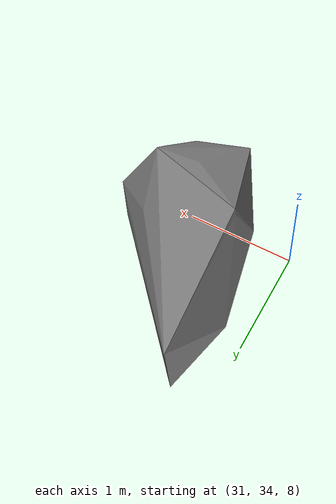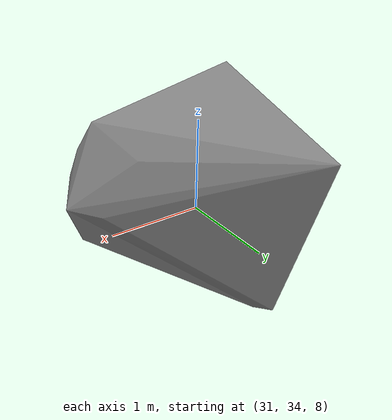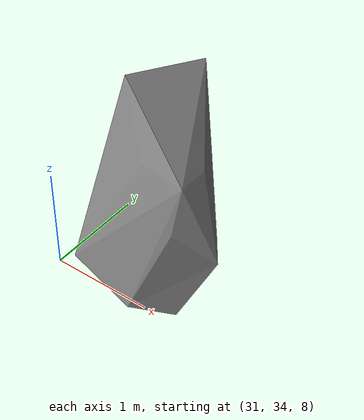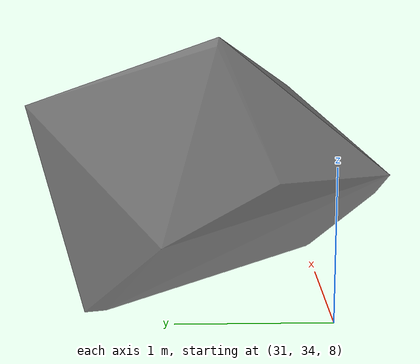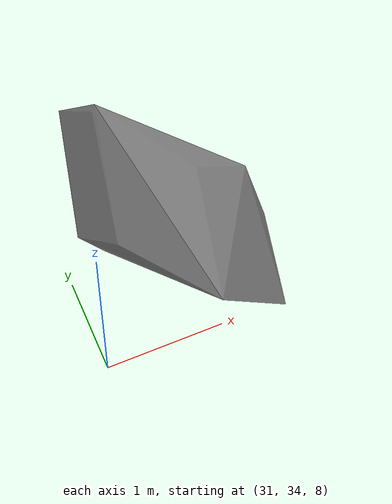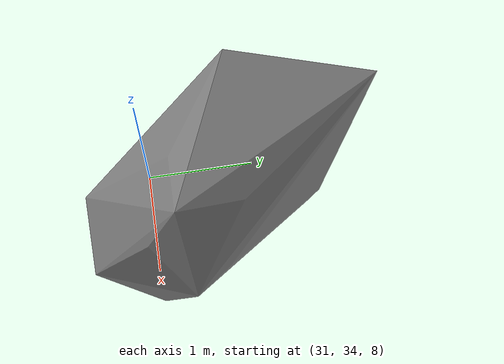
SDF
<sdf version="1.8">
 <model name="blue_mountains">
  <static>true</static>
  <link name="forest_23_23">
   <collision name="tree_138_trunk">
    <pose>32.13435 34.95004 4.347151 0 0 0.6732803</pose>
    <geometry><cylinder><radius>0.07220621</radius><length>4.345435</length></cylinder></geometry>
   </collision>
   <collision name="plant_138_crown_0">
    <pose>32.11177 34.93203 2.174433 0 0 0.6732803</pose>
    <geometry>
     <mesh>
      <uri>model://blue_mountains/meshes/canopy_2_0.dae</uri>
      <scale>0.2888249 0.2888249 0.319717</scale>
     </mesh>
    </geometry>
   </collision>
   <collision name="plant_138_crown_1">
    <pose>32.11177 34.93203 2.174433 0 0 0.6732803</pose>
    <geometry>
     <mesh>
      <uri>model://blue_mountains/meshes/canopy_2_1.dae</uri>
      <scale>0.2888249 0.2888249 0.319717</scale>
     </mesh>
    </geometry>
   </collision>
   <collision name="tree_156_trunk">
    <pose>30.42732 34.41666 4.255098 0 0 1.708861</pose>
    <geometry><cylinder><radius>0.04786937</radius><length>2.693045</length></cylinder></geometry>
   </collision>
   <collision name="plant_156_crown_0">
    <pose>30.42996 34.3977 2.908576 0 0 1.708861</pose>
    <geometry>
     <mesh>
      <uri>model://blue_mountains/meshes/canopy_1_0.dae</uri>
      <scale>0.1914775 0.1914775 0.1989105</scale>
     </mesh>
    </geometry>
   </collision>
   <collision name="plant_156_crown_1">
    <pose>30.42996 34.3977 2.908576 0 0 1.708861</pose>
    <geometry>
     <mesh>
      <uri>model://blue_mountains/meshes/canopy_1_1.dae</uri>
      <scale>0.1914775 0.1914775 0.1989105</scale>
     </mesh>
    </geometry>
   </collision>
   <collision name="tree_185_trunk">
    <pose>35.31545 33.21816 2.580832 0 0 1.949286</pose>
    <geometry><cylinder><radius>0.05326714</radius><length>2.47264</length></cylinder></geometry>
   </collision>
   <collision name="plant_185_crown_0">
    <pose>35.32333 33.19836 1.344512 0 0 1.949286</pose>
    <geometry>
     <mesh>
      <uri>model://blue_mountains/meshes/canopy_7_0.dae</uri>
      <scale>0.2130686 0.2130686 0.1859087</scale>
     </mesh>
    </geometry>
   </collision>
   <collision name="plant_185_crown_1">
    <pose>35.32333 33.19836 1.344512 0 0 1.949286</pose>
    <geometry>
     <mesh>
      <uri>model://blue_mountains/meshes/canopy_7_1.dae</uri>
      <scale>0.2130686 0.2130686 0.1859087</scale>
     </mesh>
    </geometry>
   </collision>
   <collision name="tree_206_trunk">
    <pose>37.39581 33.92195 2.445863 0 0 0.2491245</pose>
    <geometry><cylinder><radius>0.06748037</radius><length>3.532074</length></cylinder></geometry>
   </collision>
   <collision name="plant_206_crown_0">
    <pose>37.36965 33.91529 0.6798263 0 0 0.2491245</pose>
    <geometry>
     <mesh>
      <uri>model://blue_mountains/meshes/canopy_3_0.dae</uri>
      <scale>0.2699215 0.2699215 0.2625933</scale>
     </mesh>
    </geometry>
   </collision>
   <collision name="plant_206_crown_1">
    <pose>37.36965 33.91529 0.6798263 0 0 0.2491245</pose>
    <geometry>
     <mesh>
      <uri>model://blue_mountains/meshes/canopy_3_1.dae</uri>
      <scale>0.2699215 0.2699215 0.2625933</scale>
     </mesh>
    </geometry>
   </collision>
   <collision name="tree_220_trunk">
    <pose>30.57634 34.94198 4.533218 0 0 -2.170517</pose>
    <geometry><cylinder><radius>0.06306327</radius><length>3.601202</length></cylinder></geometry>
   </collision>
   <collision name="plant_220_crown_0">
    <pose>30.59058 34.9628 2.732617 0 0 -2.170517</pose>
    <geometry>
     <mesh>
      <uri>model://blue_mountains/meshes/canopy_8_0.dae</uri>
      <scale>0.2522531 0.2522531 0.2679617</scale>
     </mesh>
    </geometry>
   </collision>
   <collision name="plant_220_crown_1">
    <pose>30.59058 34.9628 2.732617 0 0 -2.170517</pose>
    <geometry>
     <mesh>
      <uri>model://blue_mountains/meshes/canopy_8_1.dae</uri>
      <scale>0.2522531 0.2522531 0.2679617</scale>
     </mesh>
    </geometry>
   </collision>
   <collision name="tree_306_trunk">
    <pose>39.16741 30.36535 2.231737 0 0 0.3067981</pose>
    <geometry><cylinder><radius>0.059647</radius><length>3.060164</length></cylinder></geometry>
   </collision>
   <collision name="plant_306_crown_0">
    <pose>39.14467 30.35814 0.7016544 0 0 0.3067981</pose>
    <geometry>
     <mesh><uri>model://blue_mountains/meshes/canopy_5_0.dae</uri><scale>0.238588 0.238588 0.2300159</scale></mesh>
    </geometry>
   </collision>
   <collision name="plant_306_crown_1">
    <pose>39.14467 30.35814 0.7016544 0 0 0.3067981</pose>
    <geometry>
     <mesh><uri>model://blue_mountains/meshes/canopy_5_1.dae</uri><scale>0.238588 0.238588 0.2300159</scale></mesh>
    </geometry>
   </collision>
   <collision name="tree_317_trunk">
    <pose>31.8081 33.13959 4.432879 0 0 -2.932905</pose>
    <geometry><cylinder><radius>0.0592015</radius><length>3.665702</length></cylinder></geometry>
   </collision>
   <collision name="plant_317_crown_0">
    <pose>31.83126 33.1445 2.600028 0 0 -2.932905</pose>
    <geometry>
     <mesh><uri>model://blue_mountains/meshes/canopy_5_0.dae</uri><scale>0.236806 0.236806 0.2755309</scale></mesh>
    </geometry>
   </collision>
   <collision name="plant_317_crown_1">
    <pose>31.83126 33.1445 2.600028 0 0 -2.932905</pose>
    <geometry>
     <mesh><uri>model://blue_mountains/meshes/canopy_5_1.dae</uri><scale>0.236806 0.236806 0.2755309</scale></mesh>
    </geometry>
   </collision>
   <collision name="tree_353_trunk">
    <pose>36.95403 32.56184 1.927754 0 0 2.530218</pose>
    <geometry><cylinder><radius>0.04002918</radius><length>1.936123</length></cylinder></geometry>
   </collision>
   <collision name="plant_353_crown_0">
    <pose>36.96714 32.55265 0.959692 0 0 2.530218</pose>
    <geometry>
     <mesh>
      <uri>model://blue_mountains/meshes/canopy_8_0.dae</uri>
      <scale>0.1601167 0.1601167 0.1440649</scale>
     </mesh>
    </geometry>
   </collision>
   <collision name="plant_353_crown_1">
    <pose>36.96714 32.55265 0.959692 0 0 2.530218</pose>
    <geometry>
     <mesh>
      <uri>model://blue_mountains/meshes/canopy_8_1.dae</uri>
      <scale>0.1601167 0.1601167 0.1440649</scale>
     </mesh>
    </geometry>
   </collision>
   <collision name="tree_371_trunk">
    <pose>36.37354 32.72029 2.092211 0 0 1.308015</pose>
    <geometry><cylinder><radius>0.04117539</radius><length>1.981352</length></cylinder></geometry>
   </collision>
   <collision name="plant_371_crown_0">
    <pose>36.36927 32.70438 1.101535 0 0 1.308015</pose>
    <geometry>
     <mesh>
      <uri>model://blue_mountains/meshes/canopy_6_0.dae</uri>
      <scale>0.1647016 0.1647016 0.1460498</scale>
     </mesh>
    </geometry>
   </collision>
   <collision name="plant_371_crown_1">
    <pose>36.36927 32.70438 1.101535 0 0 1.308015</pose>
    <geometry>
     <mesh>
      <uri>model://blue_mountains/meshes/canopy_6_1.dae</uri>
      <scale>0.1647016 0.1647016 0.1460498</scale>
     </mesh>
    </geometry>
   </collision>
   <collision name="plant_476_crown_0">
    <pose>34.91924 30.08341 2.322782 0 0 0</pose>
    <geometry>
     <mesh>
      <uri>model://blue_mountains/meshes/canopy_15_0.dae</uri>
      <scale>0.07575656 0.07575656 0.06926315</scale>
     </mesh>
    </geometry>
   </collision>
   <collision name="plant_476_crown_1">
    <pose>34.91924 30.08341 2.322782 0 0 0</pose>
    <geometry>
     <mesh>
      <uri>model://blue_mountains/meshes/canopy_15_1.dae</uri>
      <scale>0.07575656 0.07575656 0.06926315</scale>
     </mesh>
    </geometry>
   </collision>
   <collision name="plant_482_crown_0">
    <pose>34.53028 31.22932 2.337328 0 0 0</pose>
    <geometry>
     <mesh>
      <uri>model://blue_mountains/meshes/canopy_14_0.dae</uri>
      <scale>0.07575656 0.07575656 0.06926315</scale>
     </mesh>
    </geometry>
   </collision>
   <collision name="plant_482_crown_1">
    <pose>34.53028 31.22932 2.337328 0 0 0</pose>
    <geometry>
     <mesh>
      <uri>model://blue_mountains/meshes/canopy_14_1.dae</uri>
      <scale>0.07575656 0.07575656 0.06926315</scale>
     </mesh>
    </geometry>
   </collision>
   <collision name="plant_484_crown_0">
    <pose>32.31433 31.85528 3.094844 0 0 0</pose>
    <geometry>
     <mesh>
      <uri>model://blue_mountains/meshes/canopy_15_0.dae</uri>
      <scale>0.07575656 0.07575656 0.06926315</scale>
     </mesh>
    </geometry>
   </collision>
   <collision name="plant_484_crown_1">
    <pose>32.31433 31.85528 3.094844 0 0 0</pose>
    <geometry>
     <mesh>
      <uri>model://blue_mountains/meshes/canopy_15_1.dae</uri>
      <scale>0.07575656 0.07575656 0.06926315</scale>
     </mesh>
    </geometry>
   </collision>
   <collision name="plant_487_crown_0">
    <pose>30.32925 34.13982 3.477769 0 0 0</pose>
    <geometry>
     <mesh>
      <uri>model://blue_mountains/meshes/canopy_12_0.dae</uri>
      <scale>0.07575656 0.07575656 0.06926315</scale>
     </mesh>
    </geometry>
   </collision>
   <collision name="plant_487_crown_1">
    <pose>30.32925 34.13982 3.477769 0 0 0</pose>
    <geometry>
     <mesh>
      <uri>model://blue_mountains/meshes/canopy_12_1.dae</uri>
      <scale>0.07575656 0.07575656 0.06926315</scale>
     </mesh>
    </geometry>
   </collision>
   <collision name="plant_757_crown_0">
    <pose>31.40391 32.54069 15.73824 0 0 -2.924068</pose>
    <geometry>
     <mesh>
      <uri>model://blue_mountains/meshes/canopy_11_0.dae</uri>
      <scale>0.048423 0.048423 0.03486456</scale>
     </mesh>
    </geometry>
   </collision>
   <collision name="plant_757_crown_1">
    <pose>31.40391 32.54069 15.73824 0 0 -2.924068</pose>
    <geometry>
     <mesh>
      <uri>model://blue_mountains/meshes/canopy_11_1.dae</uri>
      <scale>0.048423 0.048423 0.03486456</scale>
     </mesh>
    </geometry>
   </collision>
   <collision name="plant_764_crown_0">
    <pose>31.40391 32.54069 15.73824 0 0 3.096248</pose>
    <geometry>
     <mesh>
      <uri>model://blue_mountains/meshes/canopy_9_0.dae</uri>
      <scale>0.0567726 0.0567726 0.04087627</scale>
     </mesh>
    </geometry>
   </collision>
   <collision name="plant_764_crown_1">
    <pose>31.40391 32.54069 15.73824 0 0 3.096248</pose>
    <geometry>
     <mesh>
      <uri>model://blue_mountains/meshes/canopy_9_1.dae</uri>
      <scale>0.0567726 0.0567726 0.04087627</scale>
     </mesh>
    </geometry>
   </collision>
   <collision name="plant_789_crown_0">
    <pose>30.41864 31.91083 20.71653 0 0 -1.008514</pose>
    <geometry>
     <mesh>
      <uri>model://blue_mountains/meshes/canopy_17_0.dae</uri>
      <scale>0.04005046 0.04005046 0.02883634</scale>
     </mesh>
    </geometry>
   </collision>
   <collision name="plant_789_crown_1">
    <pose>30.41864 31.91083 20.71653 0 0 -1.008514</pose>
    <geometry>
     <mesh>
      <uri>model://blue_mountains/meshes/canopy_17_1.dae</uri>
      <scale>0.04005046 0.04005046 0.02883634</scale>
     </mesh>
    </geometry>
   </collision>
   <collision name="plant_791_crown_0">
    <pose>31.35542 32.9606 11.62574 0 0 1.896675</pose>
    <geometry>
     <mesh>
      <uri>model://blue_mountains/meshes/canopy_9_0.dae</uri>
      <scale>0.05466811 0.05466811 0.03936104</scale>
     </mesh>
    </geometry>
   </collision>
   <collision name="plant_791_crown_1">
    <pose>31.35542 32.9606 11.62574 0 0 1.896675</pose>
    <geometry>
     <mesh>
      <uri>model://blue_mountains/meshes/canopy_9_1.dae</uri>
      <scale>0.05466811 0.05466811 0.03936104</scale>
     </mesh>
    </geometry>
   </collision>
   <visual name="forest_visual">
    <geometry><mesh><uri>model://blue_mountains/meshes/forest_23_23.dae</uri></mesh></geometry>
    <cast_shadows>false</cast_shadows>
   </visual>
  </link>
 </model>
</sdf>
